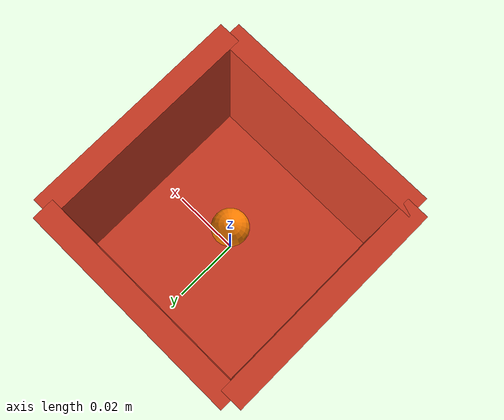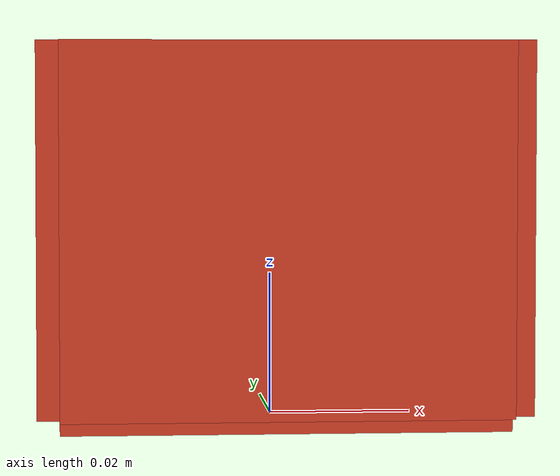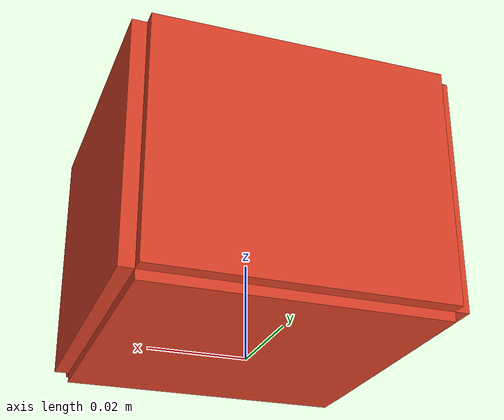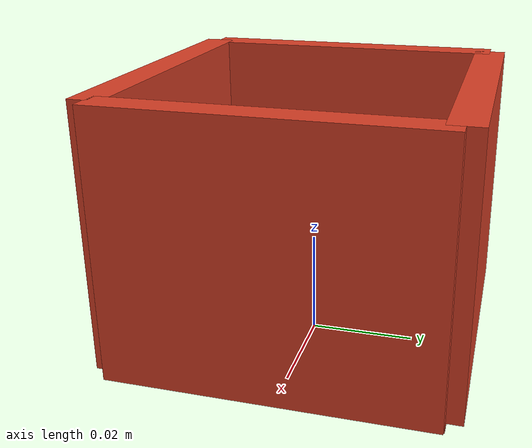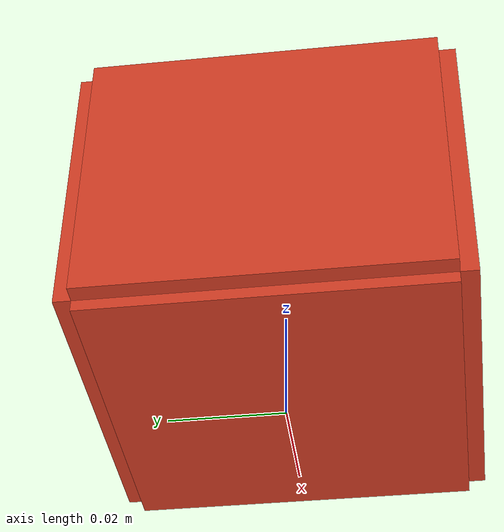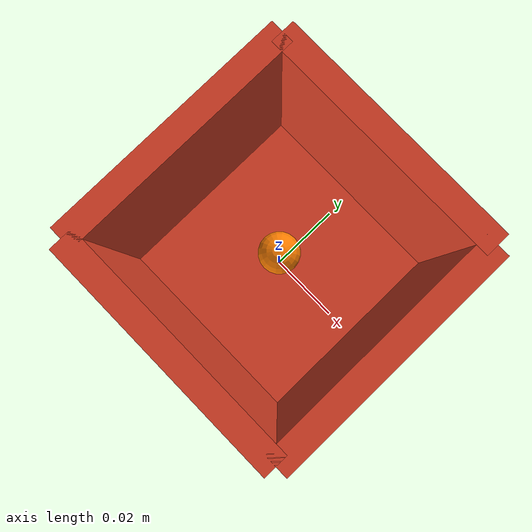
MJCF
<?xml version="1.0" encoding="utf-8"?>
<mujoco model="SpiRob_Bucket">
  <compiler angle="radian" inertiafromgeom="true" autolimits="true" />
  <default>
    <geom density="800" margin="0" friction="0.5 0.01 0.001" rgba="0.85 0.25 0.15 1.0" contype="1" conaffinity="1" />
    <site size="0.001" />
  </default>
  <worldbody>
    <body name="bucket" pos="0 0 0">
      <geom name="bucket_floor" type="box" size="0.030 0.030 0.002" pos="0 0 0.003" contype="1" conaffinity="1" />
      <geom name="bucket_wall_f" type="box" size="0.030 0.003 0.025" pos="0 0.030 0.028" contype="1" conaffinity="1" />
      <geom name="bucket_wall_b" type="box" size="0.030 0.003 0.025" pos="0 -0.030 0.028" contype="1" conaffinity="1" />
      <geom name="bucket_wall_l" type="box" size="0.003 0.030 0.025" pos="-0.030 0 0.028" contype="1" conaffinity="1" />
      <geom name="bucket_wall_r" type="box" size="0.003 0.030 0.025" pos="0.030 0 0.028" contype="1" conaffinity="1" />
      <site name="bucket_site" type="sphere" size="0.005" rgba="1 0.5 0 1" pos="0 0 0.030" />
    </body>
  </worldbody>
</mujoco>
